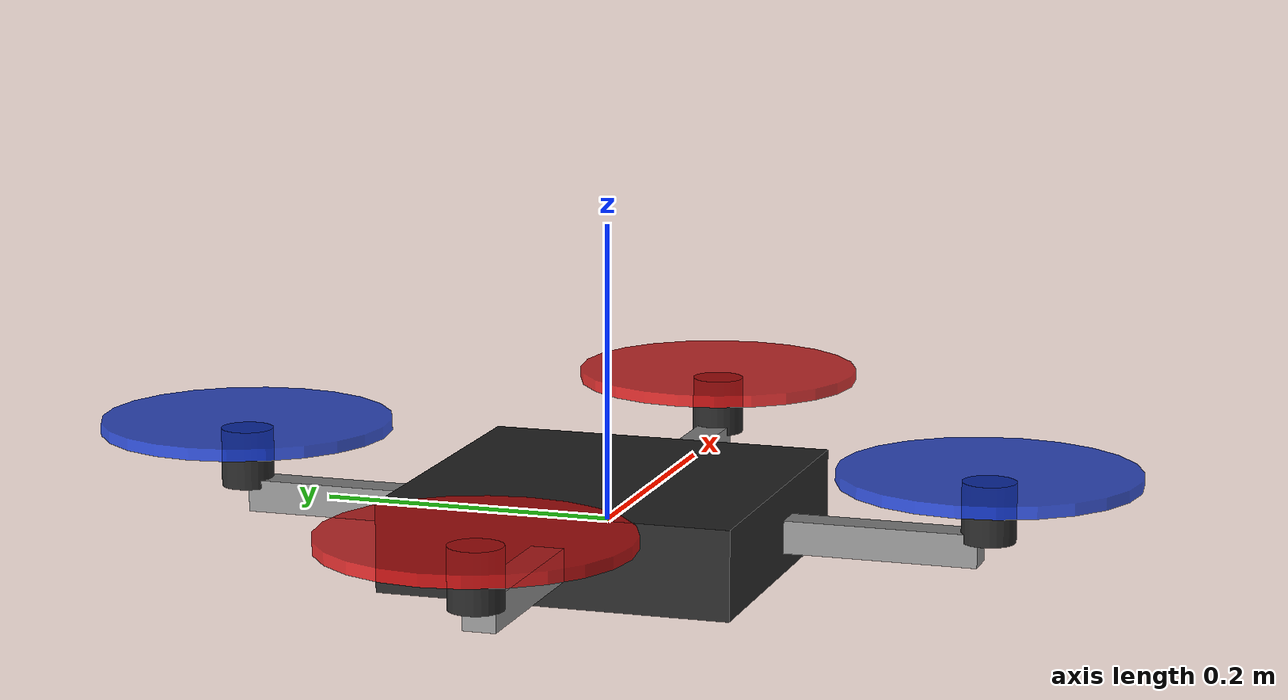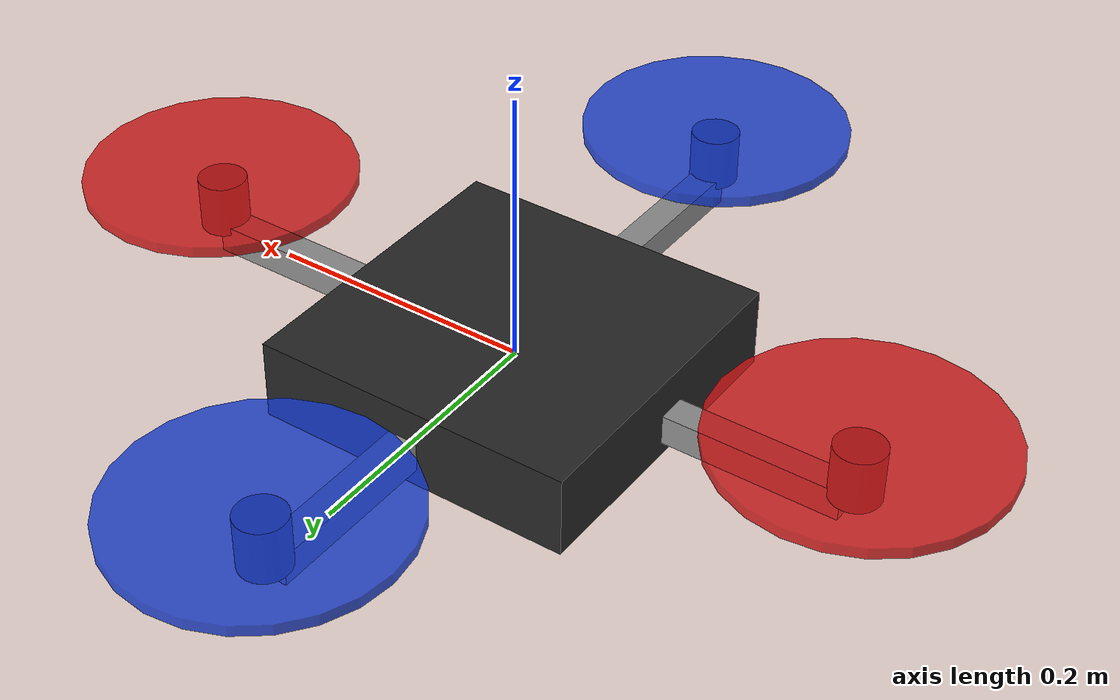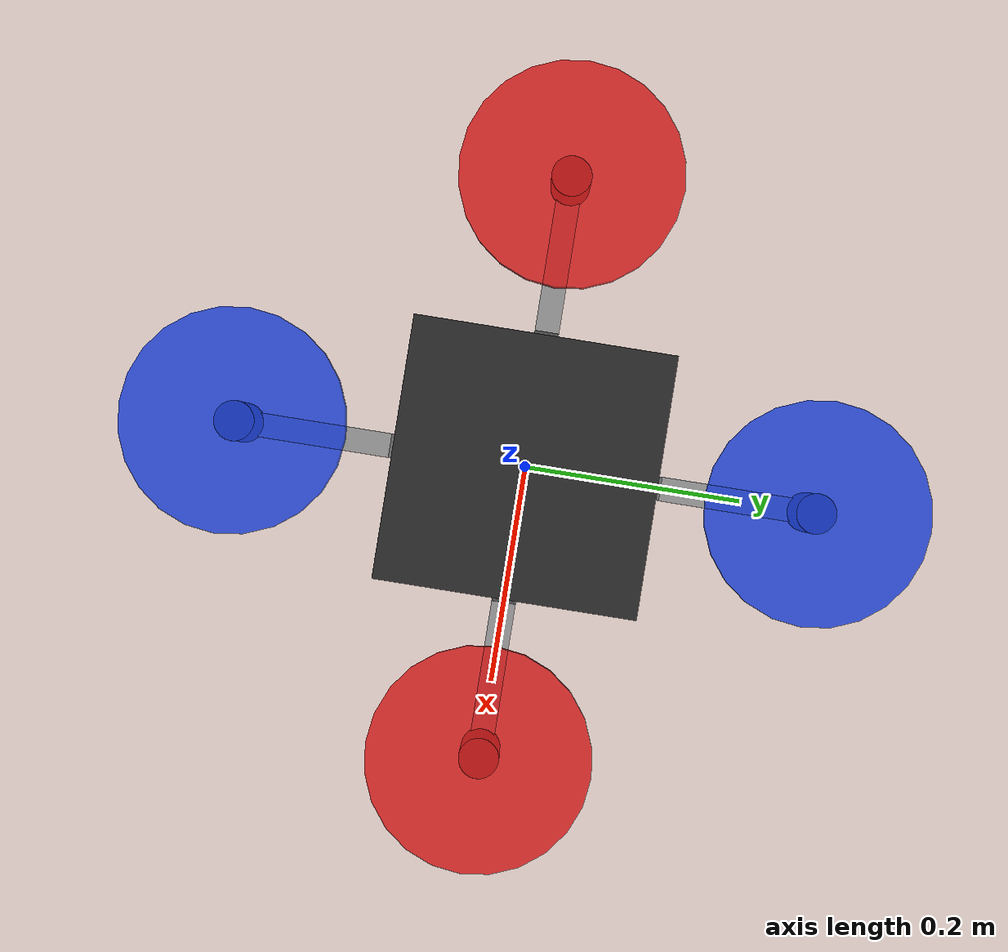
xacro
<?xml version="1.0"?>
<robot name="quadrotor" xmlns:xacro="http://ros.org/wiki/xacro">

  <xacro:arg name="drone_ns" default="drone"/>
  <xacro:property name="ns" value="$(arg drone_ns)"/>

  <!-- part files -->
  <xacro:include filename="parts/properties.urdf.xacro"/>
  <xacro:include filename="parts/materials.urdf.xacro"/>
  <xacro:include filename="parts/inertia_macros.urdf.xacro"/>
  <xacro:include filename="parts/base_link.urdf.xacro"/>
  <xacro:include filename="parts/rotor.urdf.xacro"/>
  <xacro:include filename="parts/gazebo_plugins.urdf.xacro"/>

  <!-- 4 rotors: formation drones = red/blue; evader = all green -->
  <xacro:if value="${ns == 'evader'}">
    <xacro:rotor name="rotor_front" px=" ${arm_len}" py=" 0"          rviz_mat="ev_green" gz_mat="Green"/>
    <xacro:rotor name="rotor_rear"  px="-${arm_len}" py=" 0"          rviz_mat="ev_green" gz_mat="Green"/>
    <xacro:rotor name="rotor_left"  px=" 0"          py=" ${arm_len}" rviz_mat="ev_green" gz_mat="Green"/>
    <xacro:rotor name="rotor_right" px=" 0"          py="-${arm_len}" rviz_mat="ev_green" gz_mat="Green"/>
  </xacro:if>
  <xacro:unless value="${ns == 'evader'}">
    <xacro:rotor name="rotor_front" px=" ${arm_len}" py=" 0"          rviz_mat="red"  gz_mat="Red"/>
    <xacro:rotor name="rotor_rear"  px="-${arm_len}" py=" 0"          rviz_mat="red"  gz_mat="Red"/>
    <xacro:rotor name="rotor_left"  px=" 0"          py=" ${arm_len}" rviz_mat="blue" gz_mat="Blue"/>
    <xacro:rotor name="rotor_right" px=" 0"          py="-${arm_len}" rviz_mat="blue" gz_mat="Blue"/>
  </xacro:unless>

  <!-- Gazebo plugins (force input + odometry output) -->
  <xacro:gazebo_plugins ns="${ns}"/>

</robot>

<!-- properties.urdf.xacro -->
<robot xmlns:xacro="http://ros.org/wiki/xacro">

  <!-- Body -->
  <xacro:property name="body_m"  value="1.0"/>   <!-- kg -->
  <xacro:property name="body_x"  value="0.24"/>
  <xacro:property name="body_y"  value="0.24"/>
  <xacro:property name="body_z"  value="0.06"/>

  <!-- Arms (visual only, embedded in base_link) -->
  <xacro:property name="arm_w"   value="0.022"/>  <!-- arm cross-section -->
  <xacro:property name="arm_len" value="0.26"/>   <!-- rotor offset from centre -->

  <!-- Rotors -->
  <xacro:property name="rotor_m" value="0.01"/>   <!-- kg -->
  <xacro:property name="rotor_r" value="0.10"/>   <!-- radius, m -->
  <xacro:property name="rotor_h" value="0.008"/>  <!-- thickness, m -->
  <xacro:property name="rotor_z" value="0.048"/>  <!-- height above base_link origin -->

  <!-- Motor mounts (visual only, embedded in base_link) -->
  <xacro:property name="mount_r" value="0.018"/>
  <xacro:property name="mount_h" value="0.040"/>
  <xacro:property name="mount_z" value="0.025"/>

</robot>

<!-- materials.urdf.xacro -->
<robot xmlns:xacro="http://ros.org/wiki/xacro">

  <!-- URDF materials (used by RViz) -->
  <material name="dark_grey"><color rgba="0.15 0.15 0.15 1.00"/></material>
  <material name="grey">     <color rgba="0.55 0.55 0.55 1.00"/></material>
  <material name="red">      <color rgba="0.85 0.10 0.10 0.85"/></material>
  <material name="blue">     <color rgba="0.10 0.25 0.85 0.85"/></material>
  <!-- Evader-specific palette: body=black, arms=white, rotors=green -->
  <material name="ev_black">  <color rgba="0.05 0.05 0.05 1.00"/></material>
  <material name="ev_white">  <color rgba="0.95 0.95 0.95 1.00"/></material>
  <material name="ev_green">  <color rgba="0.10 0.80 0.10 1.00"/></material>

</robot>

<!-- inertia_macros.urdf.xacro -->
<robot xmlns:xacro="http://ros.org/wiki/xacro">

  <!-- Solid box inertia about centre of mass
       Ixx = m/12*(y²+z²)   Iyy = m/12*(x²+z²)   Izz = m/12*(x²+y²) -->
  <xacro:macro name="box_inertia" params="m x y z">
    <inertial>
      <mass value="${m}"/>
      <inertia ixx="${m/12*(y*y+z*z)}" ixy="0" ixz="0"
               iyy="${m/12*(x*x+z*z)}" iyz="0"
               izz="${m/12*(x*x+y*y)}"/>
    </inertial>
  </xacro:macro>

  <!-- Solid cylinder inertia about centre of mass (axis = Z)
       Ixx = Iyy = m/12*(3r²+h²)   Izz = m/2*r² -->
  <xacro:macro name="cylinder_inertia" params="m r h">
    <inertial>
      <mass value="${m}"/>
      <inertia ixx="${m/12*(3*r*r+h*h)}" ixy="0" ixz="0"
               iyy="${m/12*(3*r*r+h*h)}" iyz="0"
               izz="${m/2*r*r}"/>
    </inertial>
  </xacro:macro>

</robot>

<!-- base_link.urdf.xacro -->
<robot xmlns:xacro="http://ros.org/wiki/xacro">

  <link name="base_link">

    <xacro:box_inertia m="${body_m}" x="${body_x}" y="${body_y}" z="${body_z}"/>

    <!-- ── body box ── -->
    <visual>
      <origin xyz="0 0 0" rpy="0 0 0"/>
      <geometry><box size="${body_x} ${body_y} ${body_z}"/></geometry>
      <xacro:if value="${ns == 'evader'}">
        <material name="ev_black"/>
      </xacro:if>
      <xacro:unless value="${ns == 'evader'}">
        <material name="dark_grey"/>
      </xacro:unless>
    </visual>
    <collision>
      <origin xyz="0 0 0" rpy="0 0 0"/>
      <geometry><box size="${body_x} ${body_y} ${body_z}"/></geometry>
    </collision>

    <!-- ── four arms (visual only, fixed to body) ── -->
    <visual>
      <origin xyz=" ${arm_len/2+body_x/4} 0 0"/>
      <geometry><box size="${arm_len/2} ${arm_w} ${arm_w}"/></geometry>
      <xacro:if value="${ns == 'evader'}"><material name="ev_white"/></xacro:if>
      <xacro:unless value="${ns == 'evader'}"><material name="grey"/></xacro:unless>
    </visual>
    <visual>
      <origin xyz="-${arm_len/2+body_x/4} 0 0"/>
      <geometry><box size="${arm_len/2} ${arm_w} ${arm_w}"/></geometry>
      <xacro:if value="${ns == 'evader'}"><material name="ev_white"/></xacro:if>
      <xacro:unless value="${ns == 'evader'}"><material name="grey"/></xacro:unless>
    </visual>
    <visual>
      <origin xyz="0  ${arm_len/2+body_y/4} 0"/>
      <geometry><box size="${arm_w} ${arm_len/2} ${arm_w}"/></geometry>
      <xacro:if value="${ns == 'evader'}"><material name="ev_white"/></xacro:if>
      <xacro:unless value="${ns == 'evader'}"><material name="grey"/></xacro:unless>
    </visual>
    <visual>
      <origin xyz="0 -${arm_len/2+body_y/4} 0"/>
      <geometry><box size="${arm_w} ${arm_len/2} ${arm_w}"/></geometry>
      <xacro:if value="${ns == 'evader'}"><material name="ev_white"/></xacro:if>
      <xacro:unless value="${ns == 'evader'}"><material name="grey"/></xacro:unless>
    </visual>

    <!-- ── motor mounts at arm tips (visual only) ── -->
    <visual>
      <origin xyz=" ${arm_len} 0          ${mount_z}"/>
      <geometry><cylinder radius="${mount_r}" length="${mount_h}"/></geometry>
      <xacro:if value="${ns == 'evader'}"><material name="ev_black"/></xacro:if>
      <xacro:unless value="${ns == 'evader'}"><material name="dark_grey"/></xacro:unless>
    </visual>
    <visual>
      <origin xyz="-${arm_len} 0          ${mount_z}"/>
      <geometry><cylinder radius="${mount_r}" length="${mount_h}"/></geometry>
      <xacro:if value="${ns == 'evader'}"><material name="ev_black"/></xacro:if>
      <xacro:unless value="${ns == 'evader'}"><material name="dark_grey"/></xacro:unless>
    </visual>
    <visual>
      <origin xyz="0           ${arm_len} ${mount_z}"/>
      <geometry><cylinder radius="${mount_r}" length="${mount_h}"/></geometry>
      <xacro:if value="${ns == 'evader'}"><material name="ev_black"/></xacro:if>
      <xacro:unless value="${ns == 'evader'}"><material name="dark_grey"/></xacro:unless>
    </visual>
    <visual>
      <origin xyz="0          -${arm_len} ${mount_z}"/>
      <geometry><cylinder radius="${mount_r}" length="${mount_h}"/></geometry>
      <xacro:if value="${ns == 'evader'}"><material name="ev_black"/></xacro:if>
      <xacro:unless value="${ns == 'evader'}"><material name="dark_grey"/></xacro:unless>
    </visual>

  </link>

  <xacro:if value="${ns == 'evader'}">
    <gazebo reference="base_link"><material>Gazebo/Black</material></gazebo>
  </xacro:if>
  <xacro:unless value="${ns == 'evader'}">
    <gazebo reference="base_link"><material>Gazebo/DarkGrey</material></gazebo>
  </xacro:unless>

</robot>

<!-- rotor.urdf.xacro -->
<robot xmlns:xacro="http://ros.org/wiki/xacro">

  <xacro:macro name="rotor" params="name px py rviz_mat gz_mat">

    <link name="${name}">
      <xacro:cylinder_inertia m="${rotor_m}" r="${rotor_r}" h="${rotor_h}"/>
      <visual>
        <origin xyz="0 0 0" rpy="0 0 0"/>
        <geometry><cylinder radius="${rotor_r}" length="${rotor_h}"/></geometry>
        <material name="${rviz_mat}"/>
      </visual>
      <collision>
        <origin xyz="0 0 0" rpy="0 0 0"/>
        <geometry><cylinder radius="${rotor_r}" length="${rotor_h}"/></geometry>
      </collision>
    </link>

    <joint name="${name}_joint" type="fixed">
      <parent link="base_link"/>
      <child  link="${name}"/>
      <origin xyz="${px} ${py} ${rotor_z}" rpy="0 0 0"/>
    </joint>

    <gazebo reference="${name}"><material>Gazebo/${gz_mat}</material></gazebo>

  </xacro:macro>

</robot>
